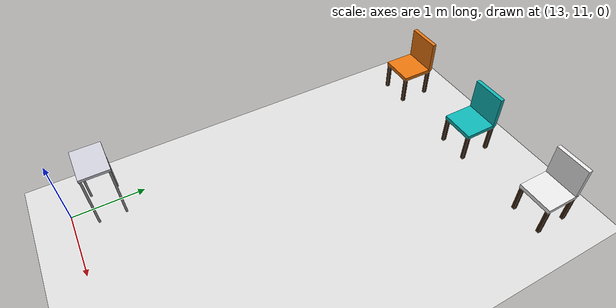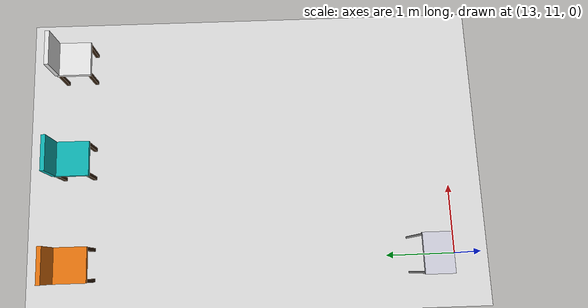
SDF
<sdf version="1.7">
 <world name="pr2_world">
  <model name="ground_plane">
   <static>1</static>
   <link name="link">
    <collision name="collision">
     <geometry><plane><normal>0 0 1</normal><size>200 200</size></plane></geometry>
     <surface><friction><ode><mu>100</mu><mu2>50</mu2></ode></friction></surface>
    </collision>
    <visual name="visual">
     <cast_shadows>0</cast_shadows>
     <geometry><plane><normal>0 0 1</normal><size>200 200</size></plane></geometry>
     <material>
      <ambient>0.85 0.85 0.85 1</ambient>
      <diffuse>0.85 0.85 0.85 1</diffuse>
      <specular>0.05 0.05 0.05 1</specular>
     </material>
    </visual>
   </link>
  </model>
  <model name="chair_tr1">
   <static>1</static>
   <pose>13.0 16.5 0 0 0 0</pose>
   <link name="link">
    <visual name="s">
     <pose>0 0 0.45 0 0 0</pose>
     <geometry><box><size>0.50 0.50 0.06</size></box></geometry>
     <material><ambient>0.90 0.45 0.05 1</ambient><diffuse>0.90 0.45 0.05 1</diffuse></material>
    </visual>
    <collision name="sc">
     <pose>0 0 0.45 0 0 0</pose>
     <geometry><box><size>0.50 0.50 0.06</size></box></geometry>
    </collision>
    <visual name="bk">
     <pose>0 0.24 0.70 0 0 0</pose>
     <geometry><box><size>0.50 0.06 0.50</size></box></geometry>
     <material><ambient>0.90 0.45 0.05 1</ambient><diffuse>0.90 0.45 0.05 1</diffuse></material>
    </visual>
    <collision name="bkc">
     <pose>0 0.24 0.70 0 0 0</pose>
     <geometry><box><size>0.50 0.06 0.50</size></box></geometry>
    </collision>
    <visual name="l1">
     <pose>-0.22 -0.22 0.225 0 0 0</pose>
     <geometry><box><size>0.05 0.05 0.45</size></box></geometry>
     <material><ambient>0.20 0.12 0.05 1</ambient><diffuse>0.20 0.12 0.05 1</diffuse></material>
    </visual>
    <collision name="l1c">
     <pose>-0.22 -0.22 0.225 0 0 0</pose>
     <geometry><box><size>0.05 0.05 0.45</size></box></geometry>
    </collision>
    <visual name="l2">
     <pose>0.22 -0.22 0.225 0 0 0</pose>
     <geometry><box><size>0.05 0.05 0.45</size></box></geometry>
     <material><ambient>0.20 0.12 0.05 1</ambient><diffuse>0.20 0.12 0.05 1</diffuse></material>
    </visual>
    <collision name="l2c">
     <pose>0.22 -0.22 0.225 0 0 0</pose>
     <geometry><box><size>0.05 0.05 0.45</size></box></geometry>
    </collision>
    <visual name="l3">
     <pose>-0.22 0.22 0.225 0 0 0</pose>
     <geometry><box><size>0.05 0.05 0.45</size></box></geometry>
     <material><ambient>0.20 0.12 0.05 1</ambient><diffuse>0.20 0.12 0.05 1</diffuse></material>
    </visual>
    <collision name="l3c">
     <pose>-0.22 0.22 0.225 0 0 0</pose>
     <geometry><box><size>0.05 0.05 0.45</size></box></geometry>
    </collision>
    <visual name="l4">
     <pose>0.22 0.22 0.225 0 0 0</pose>
     <geometry><box><size>0.05 0.05 0.45</size></box></geometry>
     <material><ambient>0.20 0.12 0.05 1</ambient><diffuse>0.20 0.12 0.05 1</diffuse></material>
    </visual>
    <collision name="l4c">
     <pose>0.22 0.22 0.225 0 0 0</pose>
     <geometry><box><size>0.05 0.05 0.45</size></box></geometry>
    </collision>
   </link>
  </model>
  <model name="chair_tr2">
   <static>1</static>
   <pose>14.5 16.5 0 0 0 0</pose>
   <link name="link">
    <visual name="s">
     <pose>0 0 0.45 0 0 0</pose>
     <geometry><box><size>0.50 0.50 0.06</size></box></geometry>
     <material><ambient>0.05 0.70 0.70 1</ambient><diffuse>0.05 0.70 0.70 1</diffuse></material>
    </visual>
    <collision name="sc">
     <pose>0 0 0.45 0 0 0</pose>
     <geometry><box><size>0.50 0.50 0.06</size></box></geometry>
    </collision>
    <visual name="bk">
     <pose>0 0.24 0.70 0 0 0</pose>
     <geometry><box><size>0.50 0.06 0.50</size></box></geometry>
     <material><ambient>0.05 0.70 0.70 1</ambient><diffuse>0.05 0.70 0.70 1</diffuse></material>
    </visual>
    <collision name="bkc">
     <pose>0 0.24 0.70 0 0 0</pose>
     <geometry><box><size>0.50 0.06 0.50</size></box></geometry>
    </collision>
    <visual name="l1">
     <pose>-0.22 -0.22 0.225 0 0 0</pose>
     <geometry><box><size>0.05 0.05 0.45</size></box></geometry>
     <material><ambient>0.20 0.12 0.05 1</ambient><diffuse>0.20 0.12 0.05 1</diffuse></material>
    </visual>
    <collision name="l1c">
     <pose>-0.22 -0.22 0.225 0 0 0</pose>
     <geometry><box><size>0.05 0.05 0.45</size></box></geometry>
    </collision>
    <visual name="l2">
     <pose>0.22 -0.22 0.225 0 0 0</pose>
     <geometry><box><size>0.05 0.05 0.45</size></box></geometry>
     <material><ambient>0.20 0.12 0.05 1</ambient><diffuse>0.20 0.12 0.05 1</diffuse></material>
    </visual>
    <collision name="l2c">
     <pose>0.22 -0.22 0.225 0 0 0</pose>
     <geometry><box><size>0.05 0.05 0.45</size></box></geometry>
    </collision>
    <visual name="l3">
     <pose>-0.22 0.22 0.225 0 0 0</pose>
     <geometry><box><size>0.05 0.05 0.45</size></box></geometry>
     <material><ambient>0.20 0.12 0.05 1</ambient><diffuse>0.20 0.12 0.05 1</diffuse></material>
    </visual>
    <collision name="l3c">
     <pose>-0.22 0.22 0.225 0 0 0</pose>
     <geometry><box><size>0.05 0.05 0.45</size></box></geometry>
    </collision>
    <visual name="l4">
     <pose>0.22 0.22 0.225 0 0 0</pose>
     <geometry><box><size>0.05 0.05 0.45</size></box></geometry>
     <material><ambient>0.20 0.12 0.05 1</ambient><diffuse>0.20 0.12 0.05 1</diffuse></material>
    </visual>
    <collision name="l4c">
     <pose>0.22 0.22 0.225 0 0 0</pose>
     <geometry><box><size>0.05 0.05 0.45</size></box></geometry>
    </collision>
   </link>
  </model>
  <model name="chair_tr3">
   <static>1</static>
   <pose>16.0 16.5 0 0 0 0</pose>
   <link name="link">
    <visual name="s">
     <pose>0 0 0.45 0 0 0</pose>
     <geometry><box><size>0.50 0.50 0.06</size></box></geometry>
     <material><ambient>0.90 0.90 0.90 1</ambient><diffuse>0.90 0.90 0.90 1</diffuse></material>
    </visual>
    <collision name="sc">
     <pose>0 0 0.45 0 0 0</pose>
     <geometry><box><size>0.50 0.50 0.06</size></box></geometry>
    </collision>
    <visual name="bk">
     <pose>0 0.24 0.70 0 0 0</pose>
     <geometry><box><size>0.50 0.06 0.50</size></box></geometry>
     <material><ambient>0.90 0.90 0.90 1</ambient><diffuse>0.90 0.90 0.90 1</diffuse></material>
    </visual>
    <collision name="bkc">
     <pose>0 0.24 0.70 0 0 0</pose>
     <geometry><box><size>0.50 0.06 0.50</size></box></geometry>
    </collision>
    <visual name="l1">
     <pose>-0.22 -0.22 0.225 0 0 0</pose>
     <geometry><box><size>0.05 0.05 0.45</size></box></geometry>
     <material><ambient>0.20 0.12 0.05 1</ambient><diffuse>0.20 0.12 0.05 1</diffuse></material>
    </visual>
    <collision name="l1c">
     <pose>-0.22 -0.22 0.225 0 0 0</pose>
     <geometry><box><size>0.05 0.05 0.45</size></box></geometry>
    </collision>
    <visual name="l2">
     <pose>0.22 -0.22 0.225 0 0 0</pose>
     <geometry><box><size>0.05 0.05 0.45</size></box></geometry>
     <material><ambient>0.20 0.12 0.05 1</ambient><diffuse>0.20 0.12 0.05 1</diffuse></material>
    </visual>
    <collision name="l2c">
     <pose>0.22 -0.22 0.225 0 0 0</pose>
     <geometry><box><size>0.05 0.05 0.45</size></box></geometry>
    </collision>
    <visual name="l3">
     <pose>-0.22 0.22 0.225 0 0 0</pose>
     <geometry><box><size>0.05 0.05 0.45</size></box></geometry>
     <material><ambient>0.20 0.12 0.05 1</ambient><diffuse>0.20 0.12 0.05 1</diffuse></material>
    </visual>
    <collision name="l3c">
     <pose>-0.22 0.22 0.225 0 0 0</pose>
     <geometry><box><size>0.05 0.05 0.45</size></box></geometry>
    </collision>
    <visual name="l4">
     <pose>0.22 0.22 0.225 0 0 0</pose>
     <geometry><box><size>0.05 0.05 0.45</size></box></geometry>
     <material><ambient>0.20 0.12 0.05 1</ambient><diffuse>0.20 0.12 0.05 1</diffuse></material>
    </visual>
    <collision name="l4c">
     <pose>0.22 0.22 0.225 0 0 0</pose>
     <geometry><box><size>0.05 0.05 0.45</size></box></geometry>
    </collision>
   </link>
  </model>
  <model name="tools_6">
   <static>1</static>
   <pose>13.0 11.5 0 0 0 0</pose>
   <link name="link">
    <visual name="tray_vis">
     <pose>0 0 0.85 0 0 0</pose>
     <geometry><box><size>0.55 0.40 0.04</size></box></geometry>
     <material>
      <ambient>0.80 0.80 0.85 1</ambient>
      <diffuse>0.80 0.80 0.85 1</diffuse>
      <specular>0.50 0.50 0.55 1</specular>
     </material>
    </visual>
    <collision name="tray_col">
     <pose>0 0 0.85 0 0 0</pose>
     <geometry><box><size>0.55 0.40 0.04</size></box></geometry>
    </collision>
    <visual name="l1">
     <pose>-0.25 -0.18 0.425 0 0 0</pose>
     <geometry><cylinder><radius>0.015</radius><length>0.85</length></cylinder></geometry>
     <material><ambient>0.60 0.60 0.60 1</ambient><diffuse>0.60 0.60 0.60 1</diffuse></material>
    </visual>
    <collision name="l1c">
     <pose>-0.25 -0.18 0.425 0 0 0</pose>
     <geometry><cylinder><radius>0.015</radius><length>0.85</length></cylinder></geometry>
    </collision>
    <visual name="l2">
     <pose>0.25 -0.18 0.425 0 0 0</pose>
     <geometry><cylinder><radius>0.015</radius><length>0.85</length></cylinder></geometry>
     <material><ambient>0.60 0.60 0.60 1</ambient><diffuse>0.60 0.60 0.60 1</diffuse></material>
    </visual>
    <collision name="l2c">
     <pose>0.25 -0.18 0.425 0 0 0</pose>
     <geometry><cylinder><radius>0.015</radius><length>0.85</length></cylinder></geometry>
    </collision>
    <visual name="l3">
     <pose>-0.25 0.18 0.425 0 0 0</pose>
     <geometry><cylinder><radius>0.015</radius><length>0.85</length></cylinder></geometry>
     <material><ambient>0.60 0.60 0.60 1</ambient><diffuse>0.60 0.60 0.60 1</diffuse></material>
    </visual>
    <collision name="l3c">
     <pose>-0.25 0.18 0.425 0 0 0</pose>
     <geometry><cylinder><radius>0.015</radius><length>0.85</length></cylinder></geometry>
    </collision>
    <visual name="l4">
     <pose>0.25 0.18 0.425 0 0 0</pose>
     <geometry><cylinder><radius>0.015</radius><length>0.85</length></cylinder></geometry>
     <material><ambient>0.60 0.60 0.60 1</ambient><diffuse>0.60 0.60 0.60 1</diffuse></material>
    </visual>
    <collision name="l4c">
     <pose>0.25 0.18 0.425 0 0 0</pose>
     <geometry><cylinder><radius>0.015</radius><length>0.85</length></cylinder></geometry>
    </collision>
   </link>
  </model>
 </world>
</sdf>
